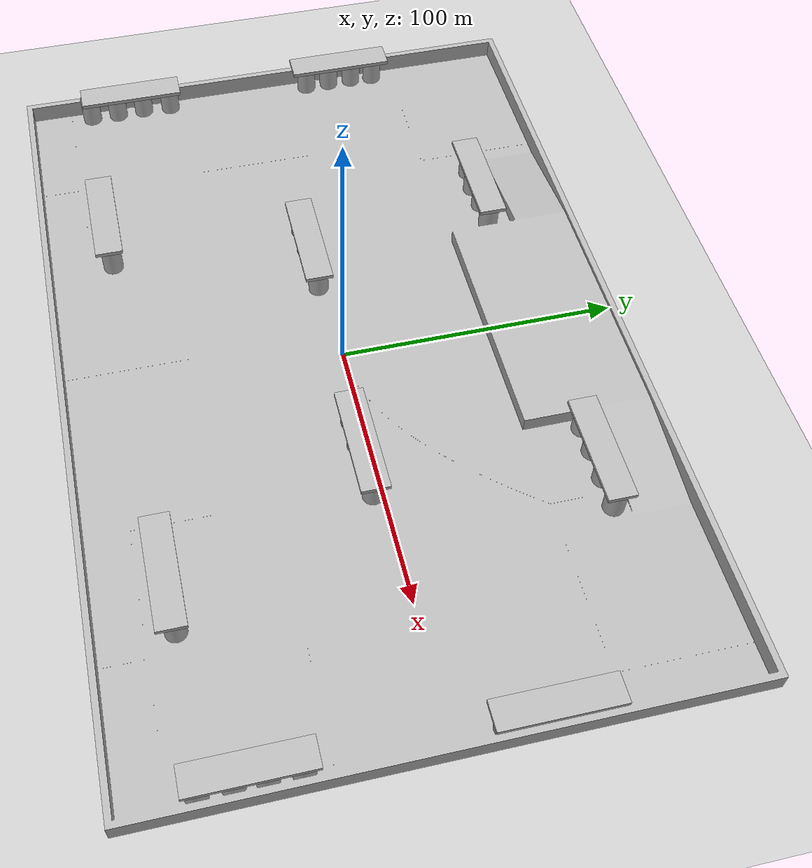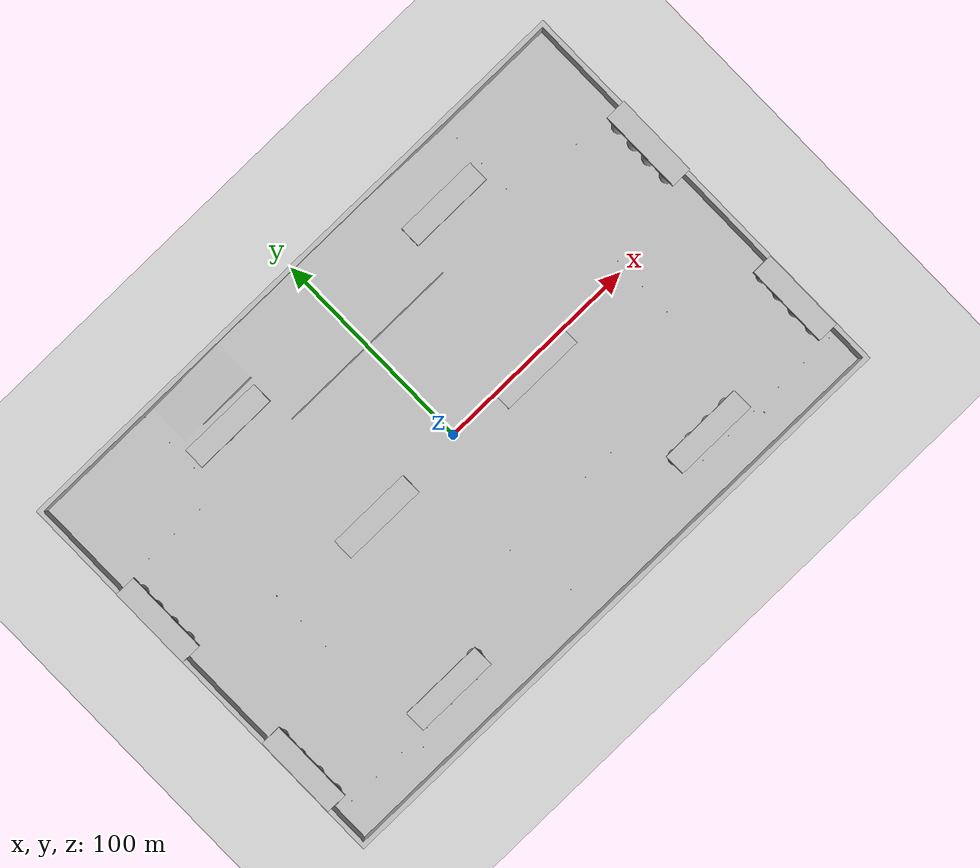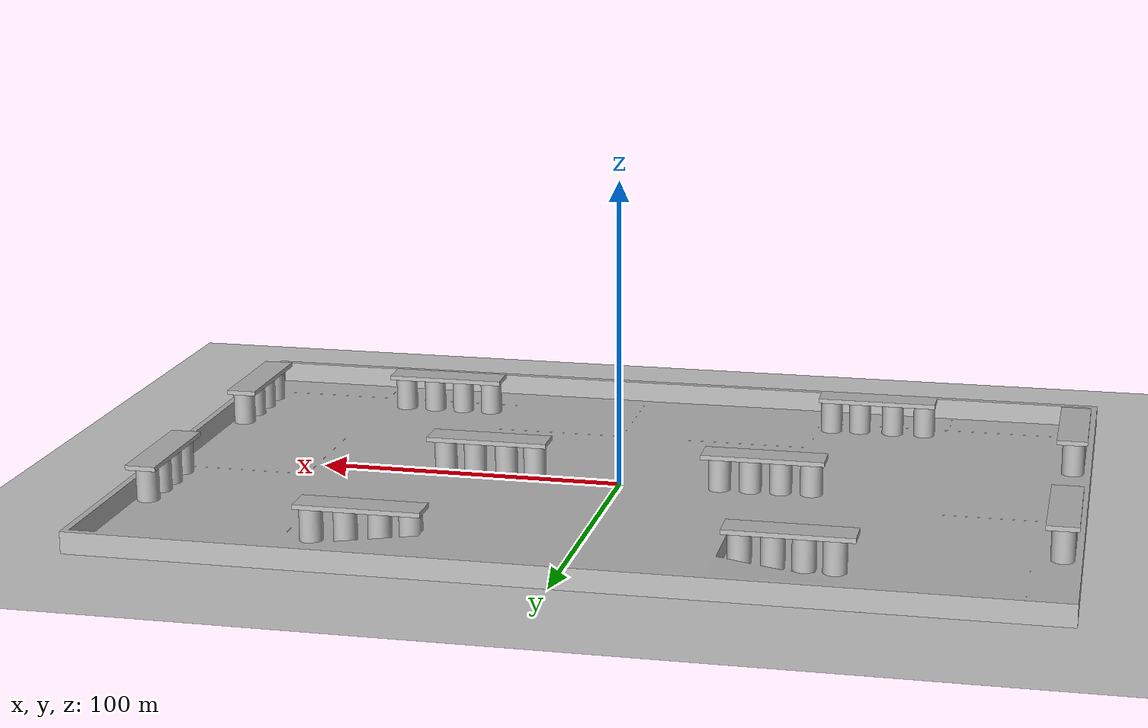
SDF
<sdf version="1.7">
 <world name="default">
  <light name="sun" type="directional">
   <pose>0 0 10 0 -0 0</pose>
   <diffuse>0.8 0.8 0.8 1</diffuse>
   <specular>0.2 0.2 0.2 1</specular>
   <attenuation>
    <range>1000</range>
    <constant>0.9</constant>
    <linear>0.01</linear>
    <quadratic>0.001</quadratic>
   </attenuation>
   <direction>-0.5 0.1 -0.9</direction>
   <spot><inner_angle>0</inner_angle><outer_angle>0</outer_angle><falloff>0</falloff></spot>
  </light>
  <model name="ground_plane">
   <static>1</static>
   <link name="link">
    <collision name="collision">
     <geometry><plane><normal>0 0 1</normal><size>100 100</size></plane></geometry>
     <surface><friction><ode><mu>100</mu><mu2>50</mu2></ode></friction></surface>
    </collision>
    <visual name="visual">
     <cast_shadows>0</cast_shadows>
     <geometry><plane><normal>0 0 1</normal><size>100 100</size></plane></geometry>
     <material>
      <script><uri>file://media/materials/scripts/gazebo.material</uri><name>Gazebo/Grey</name></script>
     </material>
    </visual>
   </link>
  </model>
  <gravity>0 0 -9.8</gravity>
  <magnetic_field>6e-06 2.3e-05 -4.2e-05</magnetic_field>
  <atmosphere type="adiabatic"/>
  <physics type="ode">
   <max_step_size>0.001</max_step_size>
   <real_time_factor>1</real_time_factor>
   <real_time_update_rate>1000</real_time_update_rate>
  </physics>
  <scene><ambient>0.4 0.4 0.4 1</ambient><background>0.7 0.7 0.7 1</background><shadows>1</shadows></scene>
  <audio><device>default</device></audio>
  <spherical_coordinates>
   <surface_model>EARTH_WGS84</surface_model>
   <latitude_deg>0</latitude_deg>
   <longitude_deg>0</longitude_deg>
   <elevation>0</elevation>
   <heading_deg>0</heading_deg>
  </spherical_coordinates>
  <model name="playmat">
   <static>1</static>
   <link name="link">
    <visual name="visual">
     <geometry><mesh><uri>model://playmat/meshes/playmat_.stl</uri><scale>0.1 0.1 0.1</scale></mesh></geometry>
    </visual>
   </link>
   <pose>0.00303 -0.000257 0 0 -0 0</pose>
  </model>
  <light name="user_directional_light_0" type="directional">
   <pose>-117.372 -15.5098 1 0 -0 0</pose>
   <diffuse>0.5 0.5 0.5 1</diffuse>
   <specular>0.1 0.1 0.1 1</specular>
   <direction>0.1 0.1 -0.9</direction>
   <attenuation>
    <range>20</range>
    <constant>0.5</constant>
    <linear>0.01</linear>
    <quadratic>0.001</quadratic>
   </attenuation>
   <spot><inner_angle>0</inner_angle><outer_angle>0</outer_angle><falloff>0</falloff></spot>
  </light>
  <model name="column">
   <static>1</static>
   <link name="link">
    <visual name="visual">
     <geometry><mesh><uri>model://column/meshes/column_.stl</uri><scale>0.1 0.1 0.1</scale></mesh></geometry>
    </visual>
   </link>
   <pose>-59.8335 -75.0308 0 0 -0 0</pose>
  </model>
  <model name="column_0">
   <static>1</static>
   <link name="link">
    <visual name="visual">
     <geometry><mesh><uri>model://column/meshes/column_.stl</uri><scale>0.1 0.1 0.1</scale></mesh></geometry>
    </visual>
   </link>
   <pose>-69.5808 -75.7197 0 0 -0 0</pose>
  </model>
  <model name="column_1">
   <static>1</static>
   <link name="link">
    <visual name="visual">
     <geometry><mesh><uri>model://column/meshes/column_.stl</uri><scale>0.1 0.1 0.1</scale></mesh></geometry>
    </visual>
   </link>
   <pose>-91.8134 -75.8835 0 0 -0 0</pose>
  </model>
  <model name="column_2">
   <static>1</static>
   <link name="link">
    <visual name="visual">
     <geometry><mesh><uri>model://column/meshes/column_.stl</uri><scale>0.1 0.1 0.1</scale></mesh></geometry>
    </visual>
   </link>
   <pose>-80.9799 -75.647 0 0 -0 0</pose>
  </model>
  <model name="column_3">
   <static>1</static>
   <link name="link">
    <visual name="visual">
     <geometry><mesh><uri>model://column/meshes/column_.stl</uri><scale>0.1 0.1 0.1</scale></mesh></geometry>
    </visual>
   </link>
   <pose>62.1298 -73.6638 0 0 -0 0</pose>
  </model>
  <model name="column_4">
   <static>1</static>
   <link name="link">
    <visual name="visual">
     <geometry><mesh><uri>model://column/meshes/column_.stl</uri><scale>0.1 0.1 0.1</scale></mesh></geometry>
    </visual>
   </link>
   <pose>72.3431 -73.439 0 0 -0 0</pose>
  </model>
  <model name="column_5">
   <static>1</static>
   <link name="link">
    <visual name="visual">
     <geometry><mesh><uri>model://column/meshes/column_.stl</uri><scale>0.1 0.1 0.1</scale></mesh></geometry>
    </visual>
   </link>
   <pose>82.6335 -73.291 0 0 -0 0</pose>
  </model>
  <model name="column_6">
   <static>1</static>
   <link name="link">
    <visual name="visual">
     <geometry><mesh><uri>model://column/meshes/column_.stl</uri><scale>0.1 0.1 0.1</scale></mesh></geometry>
    </visual>
   </link>
   <pose>93.0775 -73.0931 0 0 -0 0</pose>
  </model>
  <model name="column_7">
   <static>1</static>
   <link name="link">
    <visual name="visual">
     <geometry><mesh><uri>model://column/meshes/column_.stl</uri><scale>0.1 0.1 0.1</scale></mesh></geometry>
    </visual>
   </link>
   <pose>-62.3962 -2.60595 0 0 -0 0</pose>
  </model>
  <model name="column_8">
   <static>1</static>
   <link name="link">
    <visual name="visual">
     <geometry><mesh><uri>model://column/meshes/column_.stl</uri><scale>0.1 0.1 0.1</scale></mesh></geometry>
    </visual>
   </link>
   <pose>-52.4417 -2.42127 0 0 -0 0</pose>
  </model>
  <model name="column_9">
   <static>1</static>
   <link name="link">
    <visual name="visual">
     <geometry><mesh><uri>model://column/meshes/column_.stl</uri><scale>0.1 0.1 0.1</scale></mesh></geometry>
    </visual>
   </link>
   <pose>-42.6228 -2.03184 0 0 -0 0</pose>
  </model>
  <model name="column_10">
   <static>1</static>
   <link name="link">
    <visual name="visual">
     <geometry><mesh><uri>model://column/meshes/column_.stl</uri><scale>0.1 0.1 0.1</scale></mesh></geometry>
    </visual>
   </link>
   <pose>-32.6355 -1.96118 0 0 -0 0</pose>
  </model>
  <model name="column_11">
   <static>1</static>
   <link name="link">
    <visual name="visual">
     <geometry><mesh><uri>model://column/meshes/column_.stl</uri><scale>0.1 0.1 0.1</scale></mesh></geometry>
    </visual>
   </link>
   <pose>59.1071 -3.16047 0 0 -0 0</pose>
  </model>
  <model name="column_12">
   <static>1</static>
   <link name="link">
    <visual name="visual">
     <geometry><mesh><uri>model://column/meshes/column_.stl</uri><scale>0.1 0.1 0.1</scale></mesh></geometry>
    </visual>
   </link>
   <pose>49.0761 -2.89041 0 0 -0 0</pose>
  </model>
  <model name="column_13">
   <static>1</static>
   <link name="link">
    <visual name="visual">
     <geometry><mesh><uri>model://column/meshes/column_.stl</uri><scale>0.1 0.1 0.1</scale></mesh></geometry>
    </visual>
   </link>
   <pose>38.7056 -3.67828 0 0 -0 0</pose>
  </model>
  <model name="column_14">
   <static>1</static>
   <link name="link">
    <visual name="visual">
     <geometry><mesh><uri>model://column/meshes/column_.stl</uri><scale>0.1 0.1 0.1</scale></mesh></geometry>
    </visual>
   </link>
   <pose>29.1196 -3.59869 0 0 -0 0</pose>
  </model>
  <model name="column_15">
   <static>1</static>
   <link name="link">
    <visual name="visual">
     <geometry><mesh><uri>model://column/meshes/column_.stl</uri><scale>0.1 0.1 0.1</scale></mesh></geometry>
    </visual>
   </link>
   <pose>-50.5013 68.8666 0 0 -0 0</pose>
  </model>
  <model name="column_16">
   <static>1</static>
   <link name="link">
    <visual name="visual">
     <geometry><mesh><uri>model://column/meshes/column_.stl</uri><scale>0.1 0.1 0.1</scale></mesh></geometry>
    </visual>
   </link>
   <pose>-60.4871 68.9224 0 0 -0 0</pose>
  </model>
  <model name="column_17">
   <static>1</static>
   <link name="link">
    <visual name="visual">
     <geometry><mesh><uri>model://column/meshes/column_.stl</uri><scale>0.1 0.1 0.1</scale></mesh></geometry>
    </visual>
   </link>
   <pose>-69.7009 68.304 0 0 -0 0</pose>
  </model>
  <model name="column_18">
   <static>1</static>
   <link name="link">
    <visual name="visual">
     <geometry><mesh><uri>model://column/meshes/column_.stl</uri><scale>0.1 0.1 0.1</scale></mesh></geometry>
    </visual>
   </link>
   <pose>-78.9228 69.0388 0 0 -0 0</pose>
  </model>
  <model name="column_19">
   <static>1</static>
   <link name="link">
    <visual name="visual">
     <geometry><mesh><uri>model://column/meshes/column_.stl</uri><scale>0.1 0.1 0.1</scale></mesh></geometry>
    </visual>
   </link>
   <pose>-143.869 16.4582 0 0 -0 0</pose>
  </model>
  <model name="column_20">
   <static>1</static>
   <link name="link">
    <visual name="visual">
     <geometry><mesh><uri>model://column/meshes/column_.stl</uri><scale>0.1 0.1 0.1</scale></mesh></geometry>
    </visual>
   </link>
   <pose>-144.184 26.0699 0 0 -0 0</pose>
  </model>
  <model name="column_21">
   <static>1</static>
   <link name="link">
    <visual name="visual">
     <geometry><mesh><uri>model://column/meshes/column_.stl</uri><scale>0.1 0.1 0.1</scale></mesh></geometry>
    </visual>
   </link>
   <pose>-144.226 35.7532 0 0 -0 0</pose>
  </model>
  <model name="column_22">
   <static>1</static>
   <link name="link">
    <visual name="visual">
     <geometry><mesh><uri>model://column/meshes/column_.stl</uri><scale>0.1 0.1 0.1</scale></mesh></geometry>
    </visual>
   </link>
   <pose>-143.91 44.7451 0 0 -0 0</pose>
  </model>
  <model name="column_23">
   <static>1</static>
   <link name="link">
    <visual name="visual">
     <geometry><mesh><uri>model://column/meshes/column_.stl</uri><scale>0.1 0.1 0.1</scale></mesh></geometry>
    </visual>
   </link>
   <pose>-143.79 -41.7594 0 0 -0 0</pose>
  </model>
  <model name="column_24">
   <static>1</static>
   <link name="link">
    <visual name="visual">
     <geometry><mesh><uri>model://column/meshes/column_.stl</uri><scale>0.1 0.1 0.1</scale></mesh></geometry>
    </visual>
   </link>
   <pose>-143.911 -74.2722 0 0 -0 0</pose>
  </model>
  <model name="column_25">
   <static>1</static>
   <link name="link">
    <visual name="visual">
     <geometry><mesh><uri>model://column/meshes/column_.stl</uri><scale>0.1 0.1 0.1</scale></mesh></geometry>
    </visual>
   </link>
   <pose>-144.214 -52.8655 0 0 -0 0</pose>
  </model>
  <model name="column_26">
   <static>1</static>
   <link name="link">
    <visual name="visual">
     <geometry><mesh><uri>model://column/meshes/column_.stl</uri><scale>0.1 0.1 0.1</scale></mesh></geometry>
    </visual>
   </link>
   <pose>-143.918 -63.5609 0 0 -0 0</pose>
  </model>
  <model name="column_27">
   <static>1</static>
   <link name="link">
    <visual name="visual">
     <geometry><mesh><uri>model://column/meshes/column_.stl</uri><scale>0.1 0.1 0.1</scale></mesh></geometry>
    </visual>
   </link>
   <pose>48.9333 72.5152 0 0 -0 0</pose>
  </model>
  <model name="column_28">
   <static>1</static>
   <link name="link">
    <visual name="visual">
     <geometry><mesh><uri>model://column/meshes/column_.stl</uri><scale>0.1 0.1 0.1</scale></mesh></geometry>
    </visual>
   </link>
   <pose>80.5196 72.344 0 0 -0 0</pose>
  </model>
  <model name="column_29">
   <static>1</static>
   <link name="link">
    <visual name="visual">
     <geometry><mesh><uri>model://column/meshes/column_.stl</uri><scale>0.1 0.1 0.1</scale></mesh></geometry>
    </visual>
   </link>
   <pose>58.5937 72.7603 0 0 -0 0</pose>
  </model>
  <model name="column_30">
   <static>1</static>
   <link name="link">
    <visual name="visual">
     <geometry><mesh><uri>model://column/meshes/column_.stl</uri><scale>0.1 0.1 0.1</scale></mesh></geometry>
    </visual>
   </link>
   <pose>69.5609 72.5772 0 0 -0 0</pose>
  </model>
  <model name="column_31">
   <static>1</static>
   <link name="link">
    <visual name="visual">
     <geometry><mesh><uri>model://column/meshes/column_.stl</uri><scale>0.1 0.1 0.1</scale></mesh></geometry>
    </visual>
   </link>
   <pose>143.861 16.0632 0 0 -0 0</pose>
  </model>
  <model name="column_32">
   <static>1</static>
   <link name="link">
    <visual name="visual">
     <geometry><mesh><uri>model://column/meshes/column_.stl</uri><scale>0.1 0.1 0.1</scale></mesh></geometry>
    </visual>
   </link>
   <pose>143.922 45.6789 0 0 -0 0</pose>
  </model>
  <model name="column_33">
   <static>1</static>
   <link name="link">
    <visual name="visual">
     <geometry><mesh><uri>model://column/meshes/column_.stl</uri><scale>0.1 0.1 0.1</scale></mesh></geometry>
    </visual>
   </link>
   <pose>143.709 26.7996 0 0 -0 0</pose>
  </model>
  <model name="column_34">
   <static>1</static>
   <link name="link">
    <visual name="visual">
     <geometry><mesh><uri>model://column/meshes/column_.stl</uri><scale>0.1 0.1 0.1</scale></mesh></geometry>
    </visual>
   </link>
   <pose>143.729 35.5924 0 0 -0 0</pose>
  </model>
  <model name="column_35">
   <static>1</static>
   <link name="link">
    <visual name="visual">
     <geometry><mesh><uri>model://column/meshes/column_.stl</uri><scale>0.1 0.1 0.1</scale></mesh></geometry>
    </visual>
   </link>
   <pose>143.894 -43.6158 0 0 -0 0</pose>
  </model>
  <model name="column_36">
   <static>1</static>
   <link name="link">
    <visual name="visual">
     <geometry><mesh><uri>model://column/meshes/column_.stl</uri><scale>0.1 0.1 0.1</scale></mesh></geometry>
    </visual>
   </link>
   <pose>143.785 -74.4643 0 0 -0 0</pose>
  </model>
  <model name="column_37">
   <static>1</static>
   <link name="link">
    <visual name="visual">
     <geometry><mesh><uri>model://column/meshes/column_.stl</uri><scale>0.1 0.1 0.1</scale></mesh></geometry>
    </visual>
   </link>
   <pose>143.597 -63.8965 0 0 -0 0</pose>
  </model>
  <model name="column_38">
   <static>1</static>
   <link name="link">
    <visual name="visual">
     <geometry><mesh><uri>model://column/meshes/column_.stl</uri><scale>0.1 0.1 0.1</scale></mesh></geometry>
    </visual>
   </link>
   <pose>143.815 -54.0403 0 0 -0 0</pose>
  </model>
  <model name="platform_0">
   <static>1</static>
   <link name="link">
    <visual name="visual">
     <geometry><mesh><uri>model://platform/meshes/platform_.stl</uri><scale>0.1 0.1 0.1</scale></mesh></geometry>
    </visual>
   </link>
   <pose>-85.4812 63.6462 10.92 0 -0 0</pose>
  </model>
  <model name="platform_1">
   <static>1</static>
   <link name="link">
    <visual name="visual">
     <geometry><mesh><uri>model://platform/meshes/platform_.stl</uri><scale>0.1 0.1 0.1</scale></mesh></geometry>
    </visual>
   </link>
   <pose>-148.604 50.4122 10.92 0 0 -1.5708</pose>
  </model>
  <model name="platform_2">
   <static>1</static>
   <link name="link">
    <visual name="visual">
     <geometry><mesh><uri>model://platform/meshes/platform_.stl</uri><scale>0.1 0.1 0.1</scale></mesh></geometry>
    </visual>
   </link>
   <pose>-67.0701 -7.47477 10.92 0 -0 0</pose>
  </model>
  <model name="platform">
   <static>1</static>
   <link name="link">
    <visual name="visual">
     <geometry><mesh><uri>model://platform/meshes/platform_.stl</uri><scale>0.1 0.1 0.1</scale></mesh></geometry>
    </visual>
   </link>
   <pose>24.3673 -8.52943 10.92 0 -0 0</pose>
  </model>
  <model name="platform_3">
   <static>1</static>
   <link name="link">
    <visual name="visual">
     <geometry><mesh><uri>model://platform/meshes/platform_.stl</uri><scale>0.1 0.1 0.1</scale></mesh></geometry>
    </visual>
   </link>
   <pose>-95.7354 -80.5898 10.92 0 -0 0</pose>
  </model>
  <model name="platform_4">
   <static>1</static>
   <link name="link">
    <visual name="visual">
     <geometry><mesh><uri>model://platform/meshes/platform_.stl</uri><scale>0.1 0.1 0.1</scale></mesh></geometry>
    </visual>
   </link>
   <pose>57.9229 -79.0117 10.92 0 -0 0</pose>
  </model>
  <model name="platform_5">
   <static>1</static>
   <link name="link">
    <visual name="visual">
     <geometry><mesh><uri>model://platform/meshes/platform_.stl</uri><scale>0.1 0.1 0.1</scale></mesh></geometry>
    </visual>
   </link>
   <pose>44.7346 67.299 10.92 0 -0 0</pose>
  </model>
  <model name="platform_6">
   <static>1</static>
   <link name="link">
    <visual name="visual">
     <geometry><mesh><uri>model://platform/meshes/platform_.stl</uri><scale>0.1 0.1 0.1</scale></mesh></geometry>
    </visual>
   </link>
   <pose>-138.305 -77.3454 10.92 0 -0 1.57</pose>
  </model>
  <model name="platform_7">
   <static>1</static>
   <link name="link">
    <visual name="visual">
     <geometry><mesh><uri>model://platform/meshes/platform_.stl</uri><scale>0.1 0.1 0.1</scale></mesh></geometry>
    </visual>
   </link>
   <pose>149.25 10.6873 10.92 0 -0 1.57</pose>
  </model>
  <model name="platform_8">
   <static>1</static>
   <link name="link">
    <visual name="visual">
     <geometry><mesh><uri>model://platform/meshes/platform_.stl</uri><scale>0.1 0.1 0.1</scale></mesh></geometry>
    </visual>
   </link>
   <pose>148.236 -78.9284 10.92 0 -0 1.57</pose>
  </model>
 </world>
</sdf>
